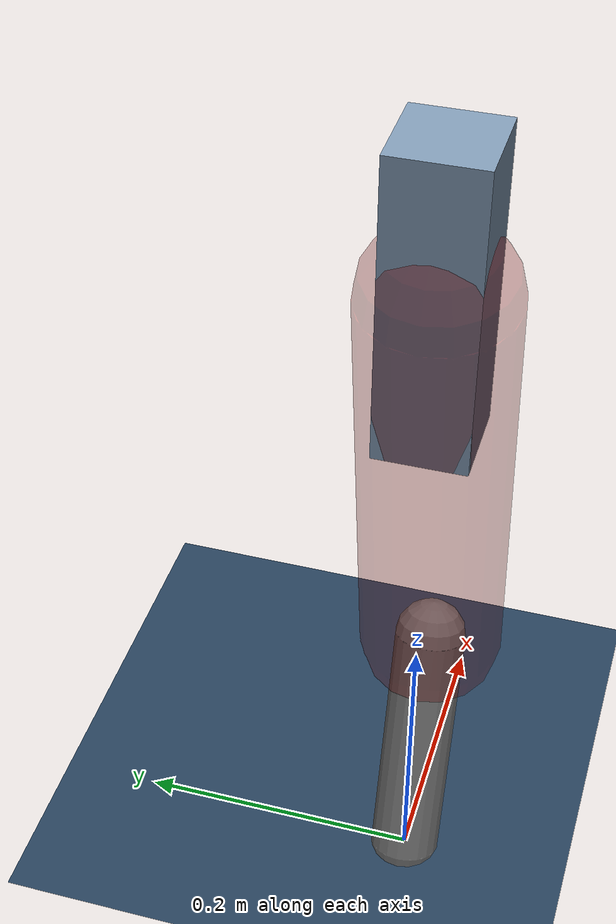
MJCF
<mujoco model="Hopper2D">
	<compiler inertiafromgeom="true" angle="radian" />
	<option timestep="0.001" integrator="implicit" cone="elliptic" solver="Newton" tolerance="1e-10" />

	<default>
		<geom contype="1" conaffinity="1" condim="3" friction="2 0.005 0.0001" solref="0.005 1" />
		<joint limited="true" damping="0.1" />
	</default>

	<asset>
		<texture name="skybox" type="skybox" builtin="gradient" rgb1=".4 .6 .8" rgb2="0 0 0" width="800" height="800" />
		<texture name="grid" type="2d" builtin="checker" rgb1=".1 .2 .3" rgb2=".2 .3 .4" width="300" height="300" mark="edge" markrgb=".2 .3 .4" />
		<material name="ground" texture="grid" texrepeat="1 1" texuniform="true" reflectance="0.1" />
		<material name="leg" rgba="0.5 0.6 0.7 1" />
	</asset>

	<worldbody>

		<geom name="floor" type="plane" size="5 5 0.25" material="ground" />

		<light directional="false" diffuse="0.8 0.8 0.8" specular="0.3 0.3 0.3" pos="0 0 2" dir="0 0 -1" />
		<light mode="targetbodycom" target="base" directional="false" diffuse="0.8 0.8 0.8" specular="0.3 0.3 0.3" pos="0 0 2" dir="0 0 -1" />

		<camera name="fixed" pos="0 -2 1" xyaxes="1 0 0 0 0 1" />
		<camera name="tracking" mode="trackcom" pos="0 -3 1" />

		<body name="root" pos="0 0 0.4874326865796645">
			<joint name="slide_x" type="slide" axis="1 0 0" range="-100 100" />
			<joint name="slide_z" type="slide" axis="0 0 1" range="0 10" />

			<body name="base" pos="0 0 0">
				<geom name="torso" type="box" size="0.03 0.03 0.1" mass="1.713" material="leg" />

				<body name="link1" pos="0 0 0" euler="0 1.4190827909784853 0">
					<joint type="hinge" axis="0 -1 0" pos="0 0 0" name="hinge1" limited="true" range="-3.14 3.14" stiffness="0" damping="0.1" />
					<geom name="thigh" type="capsule" fromto="0 0 0 0.31568490887690454 0 0" size="0.05" rgba="0.5 0 0 0.3" mass="1.0314177448553328" />

					<body name="link2" pos="0.31568490887690454 0 0" euler="0 0.41733347057373094 0">
						<joint type="hinge" axis="0 -1 0" pos="0 0 0" name="hinge2" limited="true" range="-3.14 3.14" stiffness="0" damping="0.1" />
						<geom name="shank" type="capsule" fromto="0 0 0 0.18174777770275996 0 0" size="0.025" mass="0.385398222162208" />

					</body>
				</body>
			</body>
		</body>
	</worldbody>

	<actuator>
		<motor name="torque1" joint="hinge1" ctrlrange="-65.26738651189748 65.26738651189748" ctrllimited="true" gear="1" />
		<motor name="torque2" joint="hinge2" ctrlrange="-46.57823187102757 46.57823187102757" ctrllimited="true" gear="1" />
	</actuator>
</mujoco>
